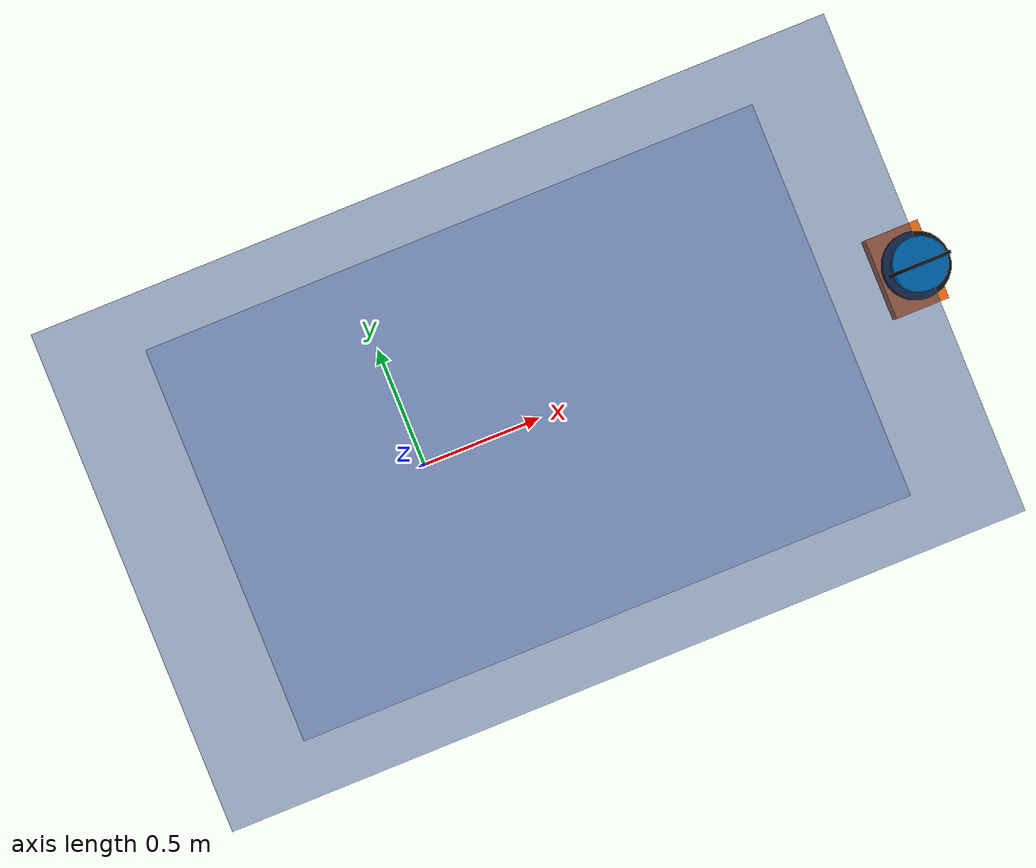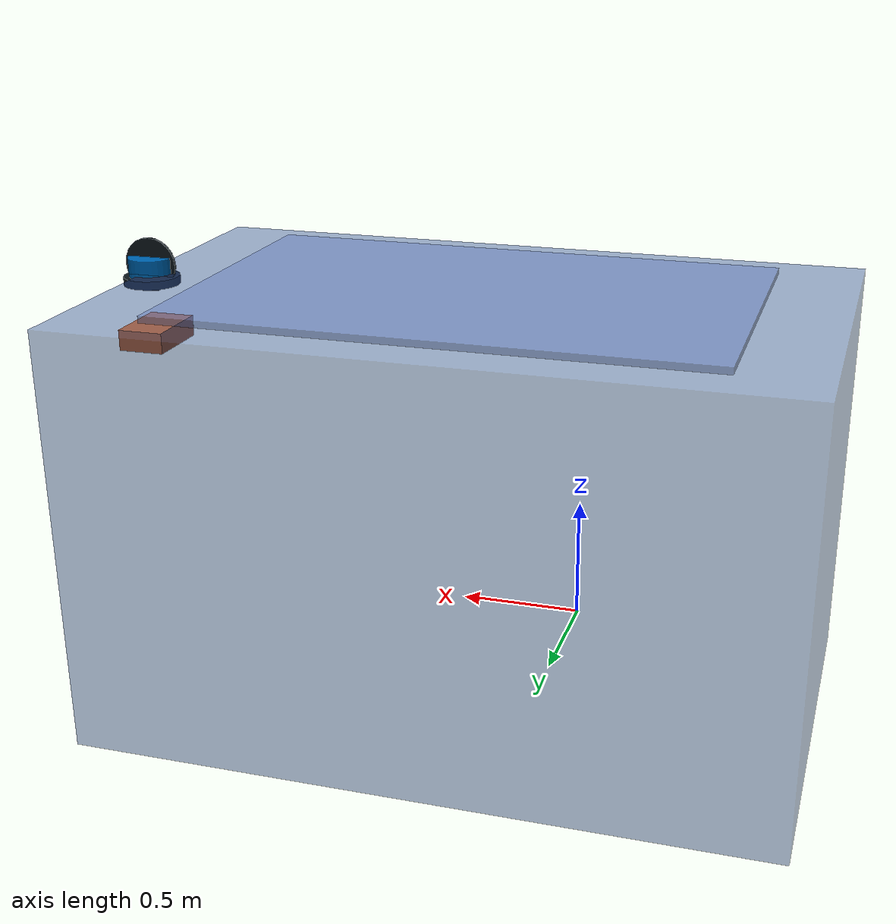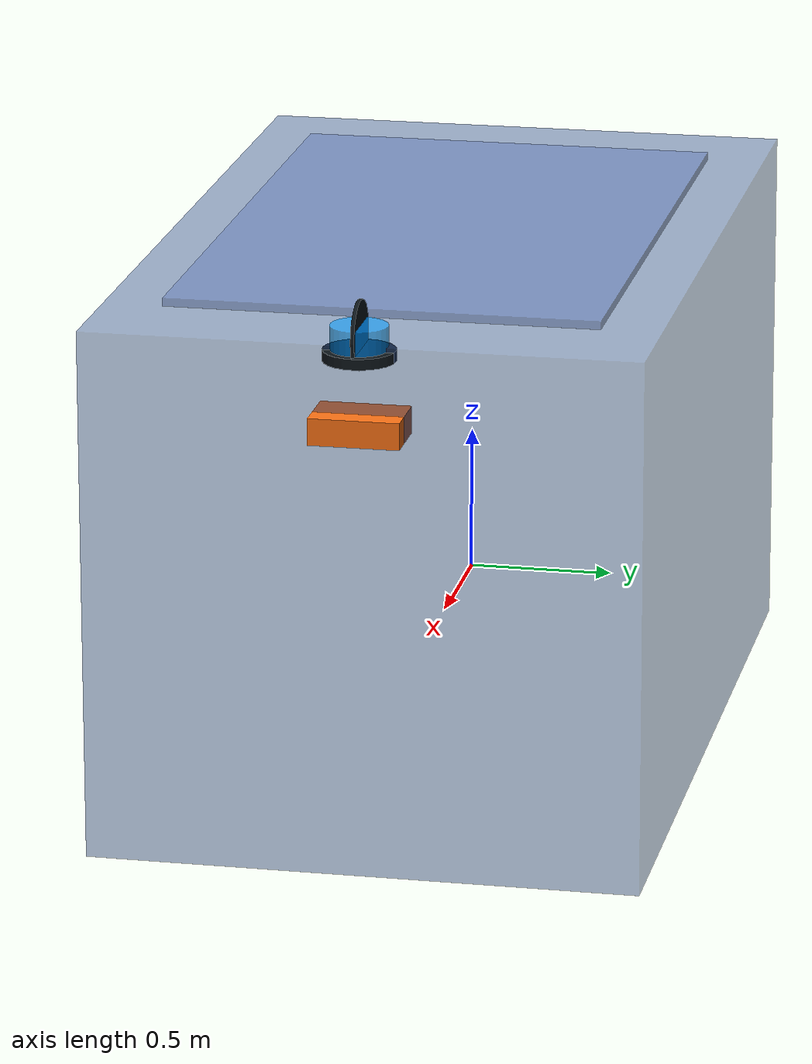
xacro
<?xml version="1.0"?>
<robot xmlns:xacro="http://ros.org/wiki/xacro" name="hooke2_sensor_mounts">
  <material name="vehicle_blue">
    <color rgba="0.15 0.28 0.55 0.45"/>
  </material>
  <material name="vehicle_outline">
    <color rgba="0.30 0.42 0.70 0.70"/>
  </material>
  <material name="lidar_shell">
    <color rgba="0.05 0.08 0.10 1.0"/>
  </material>
  <material name="lidar_glass">
    <color rgba="0.00 0.55 0.95 0.75"/>
  </material>
  <material name="nav_orange">
    <color rgba="1.00 0.45 0.08 1.0"/>
  </material>
  <material name="imu_dark">
    <color rgba="0.12 0.12 0.14 1.0"/>
  </material>

  <link name="base_link">
    <visual name="body">
      <origin xyz="0.45 0 0.45" rpy="0 0 0"/>
      <geometry>
        <box size="2.95 1.85 1.80"/>
      </geometry>
      <material name="vehicle_blue"/>
    </visual>
    <visual name="roof_reference">
      <origin xyz="0.45 0 1.36" rpy="0 0 0"/>
      <geometry>
        <box size="2.25 1.45 0.035"/>
      </geometry>
      <material name="vehicle_outline"/>
    </visual>
  </link>

  <joint name="lidar_top_mount_joint" type="fixed">
    <parent link="base_link"/>
    <child link="lidar_top_base_link"/>
    <origin xyz="1.90 0 1.337" rpy="0 0 1.57079632679"/>
  </joint>

  <link name="lidar_top_base_link">
    <visual name="mount_plate">
      <origin xyz="0 0 -0.018" rpy="0 0 0"/>
      <geometry>
        <cylinder radius="0.12" length="0.036"/>
      </geometry>
      <material name="lidar_shell"/>
    </visual>
    <visual name="lidar_body">
      <origin xyz="0 0 0.030" rpy="0 0 0"/>
      <geometry>
        <cylinder radius="0.095" length="0.100"/>
      </geometry>
      <material name="lidar_glass"/>
    </visual>
  </link>

  <joint name="lidar_top_scan_joint" type="fixed">
    <parent link="lidar_top_base_link"/>
    <child link="lidar_top"/>
    <origin xyz="0 0 0.047" rpy="0 0 0"/>
  </joint>

  <link name="lidar_top">
    <visual name="scan_frame_marker">
      <origin xyz="0 0 0" rpy="0 1.57079632679 0"/>
      <geometry>
        <cylinder radius="0.115" length="0.012"/>
      </geometry>
      <material name="lidar_shell"/>
    </visual>
  </link>

  <joint name="gnss_base_joint" type="fixed">
    <parent link="base_link"/>
    <child link="gnss_base_link"/>
    <origin xyz="1.90 0 1.037" rpy="0 0 -1.57079632679"/>
  </joint>

  <link name="gnss_base_link">
    <visual name="navigation_box">
      <origin xyz="0 0 0.045" rpy="0 0 0"/>
      <geometry>
        <box size="0.30 0.20 0.09"/>
      </geometry>
      <material name="nav_orange"/>
    </visual>
  </link>

  <joint name="imu_joint" type="fixed">
    <parent link="base_link"/>
    <child link="imu_link"/>
    <origin xyz="1.90 0 1.037" rpy="0 0 -1.57079632679"/>
  </joint>

  <link name="imu_link">
    <visual name="imu_core">
      <origin xyz="0 0 0.070" rpy="0 0 0"/>
      <geometry>
        <box size="0.13 0.09 0.035"/>
      </geometry>
      <material name="imu_dark"/>
    </visual>
  </link>
</robot>
